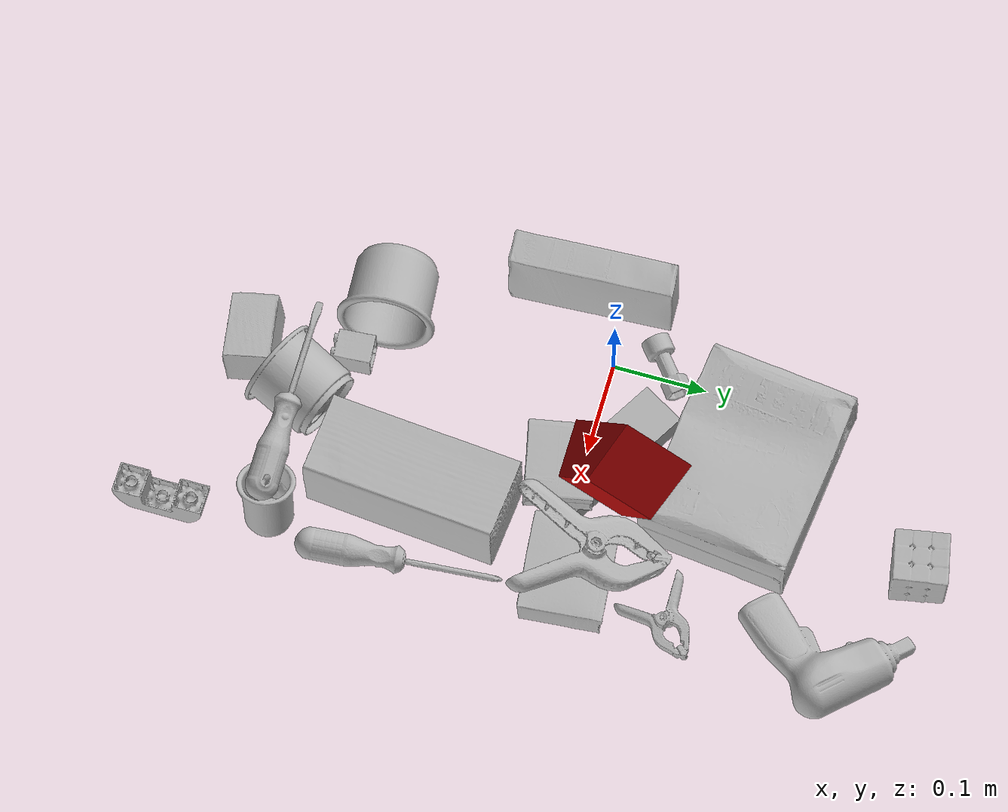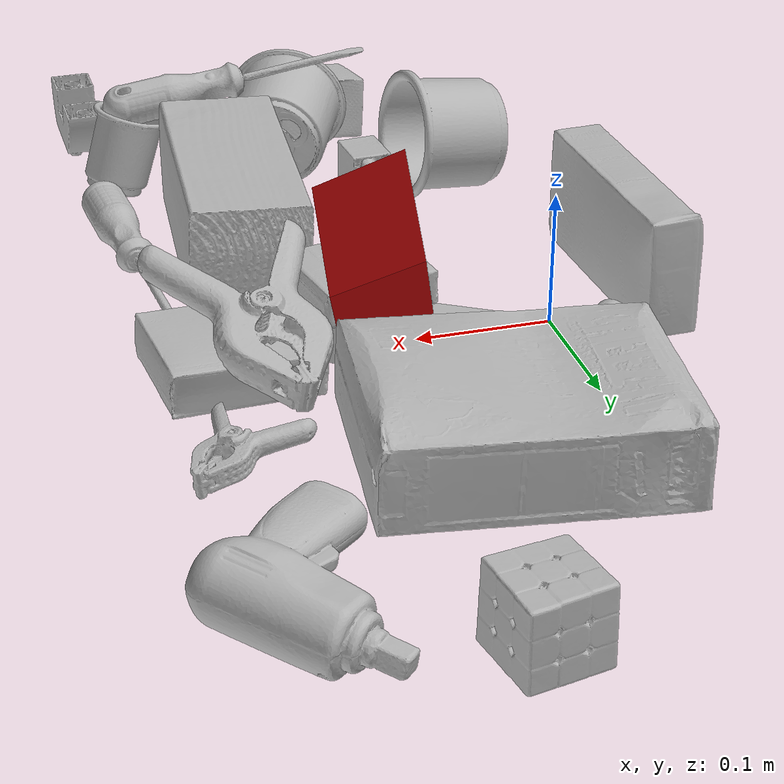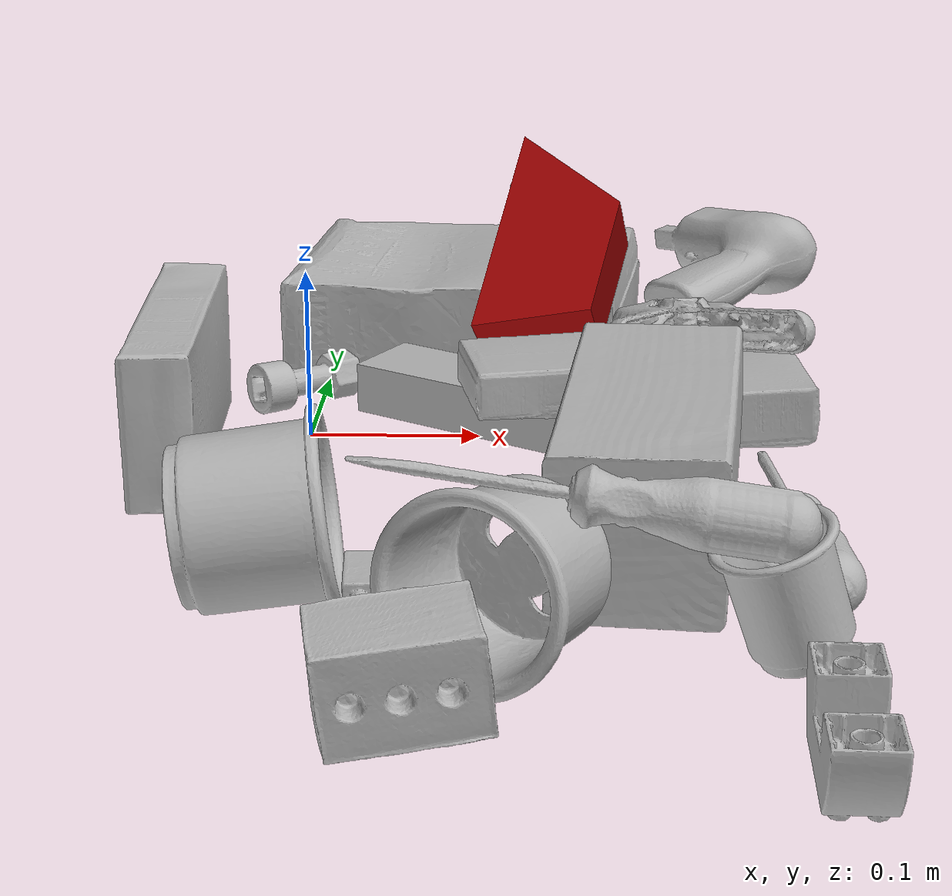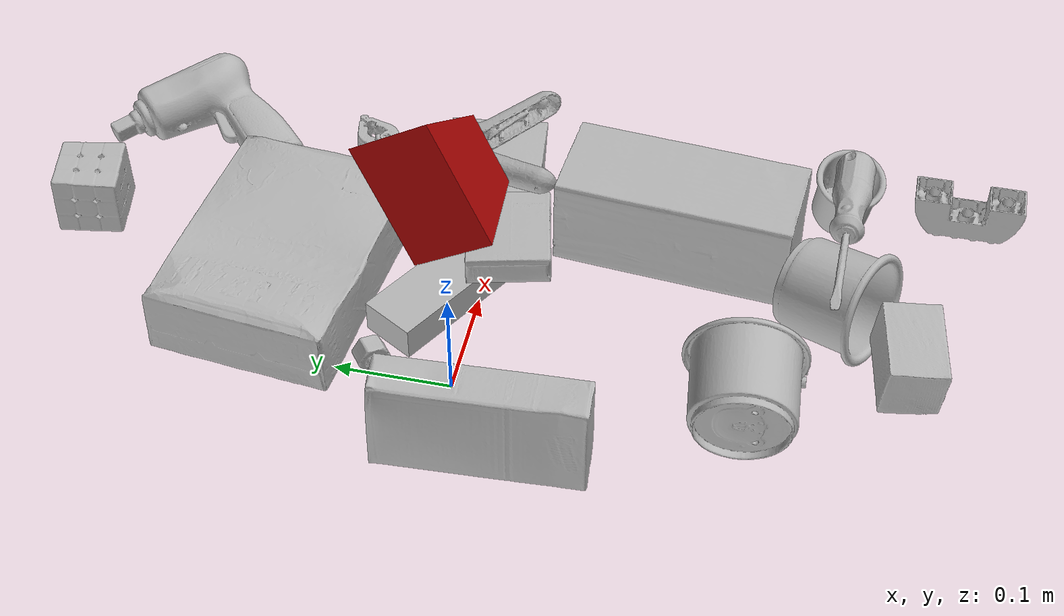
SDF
<sdf version="1.4">
  <world name="default">
    <light name="light1" type="point">
      <pose>0 0 1 0 0 0</pose>
      <diffuse>3 3 3 1</diffuse>
      <specular>3 3 3 1</specular>
    </light>
    <light name="light2" type="point">
      <pose>0 0.5 2 0 0 0</pose>
      <diffuse>1 1 1 1</diffuse>
      <specular>1 1 1 1</specular>
    </light>
    <light name="light3" type="point">
      <pose>0 0.5 2 0 0 0</pose>
      <diffuse>3 3 3 1</diffuse>
      <specular>3 3 3 1</specular>
    </light>
    <scene>
      <ambient>0.7 0.7 0.7</ambient>
    </scene>
    <model name="box21">
      <link name="link_box21">
        <collision name="default">
          <geometry>
            <mesh>
              <uri>model://cracker_box/collision_meshes/collision.obj</uri>
              <scale>1.0 1.0 1.0</scale>
            </mesh>
          </geometry>
          <surface>
            <friction>
              <ode>
                <mu>0.5</mu>
                <mu2>0.5</mu2>
              </ode>
            </friction>
          <contact>
        <ode>
            <max_vel>0</max_vel>
            <min_depth>0.0001</min_depth>
            <kp>1e8</kp>
        </ode>
    </contact></surface>
        </collision>
        <visual name="default">
          <geometry>
            <mesh>
              <uri>model://cracker_box/visual_meshes/visual.dae</uri>
              <scale>1.0 1.0 1.0</scale>
            </mesh>
          </geometry>
        </visual>
        <inertial>
          <mass>3.1344146728515625</mass>
          <pose>0.0009464123286306858 0.00025434247800149024 -0.0017029535956680775 -0.0003162077429326042 -0.011106488668875016 0.0025467950024750923</pose>
          <inertia>
            <ixx>0.0079725515</ixx>
            <iyy>0.01316425</iyy>
            <izz>0.01878659</izz>
            <ixy>0</ixy>
            <ixz>0</ixz>
            <iyz>0</iyz>
          </inertia>
        </inertial>
      </link>
      <pose>0.08359619975090027 0.16597023606300354 0.0364823192358017 -0.011804007056950826 -0.007368635642825667 -0.11161856514013514</pose>
    </model>
    <model name="box22">
      <link name="link_box22">
        <collision name="default">
          <geometry>
            <mesh>
              <uri>model://jenga/collision_meshes/collision.obj</uri>
              <scale>1.0 1.0 1.0</scale>
            </mesh>
          </geometry>
          <surface>
            <friction>
              <ode>
                <mu>0.5</mu>
                <mu2>0.5</mu2>
              </ode>
            </friction>
          <contact>
        <ode>
            <max_vel>0</max_vel>
            <min_depth>0.0001</min_depth>
            <kp>1e8</kp>
        </ode>
    </contact></surface>
        </collision>
        <visual name="default">
          <geometry>
            <mesh>
              <uri>model://jenga/visual_meshes/visual.dae</uri>
              <scale>1.0 1.0 1.0</scale>
            </mesh>
          </geometry>
        </visual>
        <inertial>
          <mass>0.23869852721691132</mass>
          <pose>-2.502855807051674e-07 -0.0001025000965455547 -4.092339804628864e-05 0.0 -7.34215461761844e-07 0.0</pose>
          <inertia>
            <ixx>6.605367e-05</ixx>
            <iyy>0.00044757788</iyy>
            <izz>0.00047782745</izz>
            <ixy>0</ixy>
            <ixz>0</ixz>
            <iyz>0</iyz>
          </inertia>
        </inertial>
      </link>
      <pose>0.10078098624944687 0.02591295912861824 0.014997527003288269 8.678563983081988e-05 1.569318041318597e-05 2.611281240180502</pose>
    </model>
    <model name="box23">
      <link name="link_box23">
        <collision name="default">
          <geometry>
            <mesh>
              <uri>model://rubiks_cube/collision_meshes/collision.obj</uri>
              <scale>1.0 1.0 1.0</scale>
            </mesh>
          </geometry>
          <surface>
            <friction>
              <ode>
                <mu>0.5</mu>
                <mu2>0.5</mu2>
              </ode>
            </friction>
          <contact>
        <ode>
            <max_vel>0</max_vel>
            <min_depth>0.0001</min_depth>
            <kp>1e8</kp>
        </ode>
    </contact></surface>
        </collision>
        <visual name="default">
          <geometry>
            <mesh>
              <uri>model://rubiks_cube/visual_meshes/visual.dae</uri>
              <scale>1.0 1.0 1.0</scale>
            </mesh>
          </geometry>
        </visual>
        <inertial>
          <mass>0.26229962706565857</mass>
          <pose>2.6721041649580002e-05 5.2569666877388954e-05 -7.264316082000732e-06 -0.05467189873579491 -0.09814109048128683 -0.0344550730209751</pose>
          <inertia>
            <ixx>0.00014493814</ixx>
            <iyy>0.00014426222</iyy>
            <izz>0.00014613918</izz>
            <ixy>0</ixy>
            <ixz>0</ixz>
            <iyz>0</iyz>
          </inertia>
        </inertial>
      </link>
      <pose>0.13583070039749146 0.3624066412448883 0.02933008410036564 1.5776132545936916 -0.01667874835860224 0.18664568982764373</pose>
    </model>
    <model name="cup1">
      <link name="link_cup1">
        <collision name="default">
          <geometry>
            <mesh>
              <uri>model://j_cups/collision_meshes/collision.obj</uri>
              <scale>1.0 1.0 1.0</scale>
            </mesh>
          </geometry>
          <surface>
            <friction>
              <ode>
                <mu>0.5</mu>
                <mu2>0.5</mu2>
              </ode>
            </friction>
          <contact>
        <ode>
            <max_vel>0</max_vel>
            <min_depth>0.0001</min_depth>
            <kp>1e8</kp>
        </ode>
    </contact></surface>
        </collision>
        <visual name="default">
          <geometry>
            <mesh>
              <uri>model://j_cups/visual_meshes/visual.dae</uri>
              <scale>1.0 1.0 1.0</scale>
            </mesh>
          </geometry>
        </visual>
        <inertial>
          <mass>0.10388943552970886</mass>
          <pose>0.0006164857186377048 0.0005398984649218619 -0.0013479008339345455 0.03030360356214998 0.03758024855654077 0.43868424196936845</pose>
          <inertia>
            <ixx>0.00015254253</ixx>
            <iyy>0.0001541288</iyy>
            <izz>0.00017584988</izz>
            <ixy>0</ixy>
            <ixz>0</ixz>
            <iyz>0</iyz>
          </inertia>
        </inertial>
      </link>
      <pose>0.003975513391196728 -0.2385554313659668 0.04698612913489342 0.7505193759601588 1.4120530543755605 0.8511836834659571</pose>
    </model>
    <model name="cup2">
      <link name="link_cup2">
        <collision name="default">
          <geometry>
            <mesh>
              <uri>model://i_cups/collision_meshes/collision.obj</uri>
              <scale>1.0 1.0 1.0</scale>
            </mesh>
          </geometry>
          <surface>
            <friction>
              <ode>
                <mu>0.5</mu>
                <mu2>0.5</mu2>
              </ode>
            </friction>
          <contact>
        <ode>
            <max_vel>0</max_vel>
            <min_depth>0.0001</min_depth>
            <kp>1e8</kp>
        </ode>
    </contact></surface>
        </collision>
        <visual name="default">
          <geometry>
            <mesh>
              <uri>model://i_cups/visual_meshes/visual.dae</uri>
              <scale>1.0 1.0 1.0</scale>
            </mesh>
          </geometry>
        </visual>
        <inertial>
          <mass>0.057485051453113556</mass>
          <pose>0.00011239853483857587 0.00016797262651380152 -0.000857901235576719 -0.028982969026390082 -0.03987335468246028 -0.34591562504163004</pose>
          <inertia>
            <ixx>7.958892e-05</ixx>
            <iyy>8.029015e-05</iyy>
            <izz>8.8953486e-05</izz>
            <ixy>0</ixy>
            <ixz>0</ixz>
            <iyz>0</iyz>
          </inertia>
        </inertial>
      </link>
      <pose>0.1260787546634674 -0.2980048656463623 0.044965438544750214 -1.284142725298135 -1.1440388281394815 2.451312009349547</pose>
    </model>
    <model name="box11">
      <link name="link_box11">
        <collision name="default">
          <geometry>
            <mesh>
              <uri>model://wood_block/collision_meshes/collision.obj</uri>
              <scale>1.0 1.0 1.0</scale>
            </mesh>
          </geometry>
          <surface>
            <friction>
              <ode>
                <mu>0.5</mu>
                <mu2>0.5</mu2>
              </ode>
            </friction>
          <contact>
        <ode>
            <max_vel>0</max_vel>
            <min_depth>0.0001</min_depth>
            <kp>1e8</kp>
        </ode>
    </contact></surface>
        </collision>
        <visual name="default">
          <geometry>
            <mesh>
              <uri>model://wood_block/visual_meshes/visual.dae</uri>
              <scale>1.0 1.0 1.0</scale>
            </mesh>
          </geometry>
        </visual>
        <inertial>
          <mass>2.2218124866485596</mass>
          <pose>-5.813315510749817e-06 -0.000570809468626976 0.0002640858292579651 -0.052211005792275555 -0.005192694700552194 -0.006861375481739596</pose>
          <inertia>
            <ixx>0.0029731211</ixx>
            <iyy>0.009392092</iyy>
            <izz>0.009356961</izz>
            <ixy>0</ixy>
            <ixz>0</ixz>
            <iyz>0</iyz>
          </inertia>
        </inertial>
      </link>
      <pose>0.19596077501773834 -0.157470703125 0.04570075497031212 1.5681397201279554 -0.006949547804638283 1.4898950449160342</pose>
    </model>
    <model name="box12">
      <link name="link_box12">
        <collision name="default">
          <geometry>
            <mesh>
              <uri>model://sugar_box/collision_meshes/collision.obj</uri>
              <scale>1.0 1.0 1.0</scale>
            </mesh>
          </geometry>
          <surface>
            <friction>
              <ode>
                <mu>0.5</mu>
                <mu2>0.5</mu2>
              </ode>
            </friction>
          <contact>
        <ode>
            <max_vel>0</max_vel>
            <min_depth>0.0001</min_depth>
            <kp>1e8</kp>
        </ode>
    </contact></surface>
        </collision>
        <visual name="default">
          <geometry>
            <mesh>
              <uri>model://sugar_box/visual_meshes/visual.dae</uri>
              <scale>1.0 1.0 1.0</scale>
            </mesh>
          </geometry>
        </visual>
        <inertial>
          <mass>1.0162616968154907</mass>
          <pose>0.0010343727190047503 3.849109634757042e-05 -0.00036364805418998003 -0.0004046261550277283 0.0010506634055573133 0.0026153787890220875</pose>
          <inertia>
            <ixx>0.00084674655</ixx>
            <iyy>0.002736858</iyy>
            <izz>0.0032763465</izz>
            <ixy>0</ixy>
            <ixz>0</ixz>
            <iyz>0</iyz>
          </inertia>
        </inertial>
      </link>
      <pose>-0.06913144886493683 -0.04204687476158142 0.046450089663267136 1.5710197035759321 -3.9946623841988186e-05 1.6228073396840872</pose>
    </model>
    <model name="box13">
      <link name="link_box13">
        <collision name="default">
          <geometry>
            <mesh>
              <uri>model://pudding_box/collision_meshes/collision.obj</uri>
              <scale>1.0 1.0 1.0</scale>
            </mesh>
          </geometry>
          <surface>
            <friction>
              <ode>
                <mu>0.5</mu>
                <mu2>0.5</mu2>
              </ode>
            </friction>
          <contact>
        <ode>
            <max_vel>0</max_vel>
            <min_depth>0.0001</min_depth>
            <kp>1e8</kp>
        </ode>
    </contact></surface>
        </collision>
        <visual name="default">
          <geometry>
            <mesh>
              <uri>model://pudding_box/visual_meshes/visual.dae</uri>
              <scale>1.0 1.0 1.0</scale>
            </mesh>
          </geometry>
        </visual>
        <inertial>
          <mass>0.24922829866409302</mass>
          <pose>0.0004894822486676276 0.0008067885646596551 -0.0005188828217796981 0.005213100397381839 -0.006603797317439846 0.02007982889363753</pose>
          <inertia>
            <ixx>0.00028173975</ixx>
            <iyy>0.00018955652</iyy>
            <izz>0.0004160624</izz>
            <ixy>0</ixy>
            <ixz>0</ixz>
            <iyz>0</iyz>
          </inertia>
        </inertial>
      </link>
      <pose>0.2375979870557785 0.019510241225361824 0.019725801423192024 0.02234581703630515 -0.011398721132478239 -1.472823512718753</pose>
    </model>
    <model name="box14">
      <link name="link_box14">
        <collision name="default">
          <geometry>
            <mesh>
              <uri>model://gelatin_box/collision_meshes/collision.obj</uri>
              <scale>1.0 1.0 1.0</scale>
            </mesh>
          </geometry>
          <surface>
            <friction>
              <ode>
                <mu>0.5</mu>
                <mu2>0.5</mu2>
              </ode>
            </friction>
          <contact>
        <ode>
            <max_vel>0</max_vel>
            <min_depth>0.0001</min_depth>
            <kp>1e8</kp>
        </ode>
    </contact></surface>
        </collision>
        <visual name="default">
          <geometry>
            <mesh>
              <uri>model://gelatin_box/visual_meshes/visual.dae</uri>
              <scale>1.0 1.0 1.0</scale>
            </mesh>
          </geometry>
        </visual>
        <inertial>
          <mass>0.21856601536273956</mass>
          <pose>0.0004319618456065655 0.00011156871914863586 -0.00036403213744051754 -0.001050372093012012 -0.00475581868936722 0.016440559471878533</pose>
          <inertia>
            <ixx>0.00015428978</ixx>
            <iyy>0.000110208384</iyy>
            <izz>0.00023486343</izz>
            <ixy>0</ixy>
            <ixz>0</ixz>
            <iyz>0</iyz>
          </inertia>
        </inertial>
      </link>
      <pose>0.1372665911912918 -0.017707232385873795 0.04465378820896149 -3.141434040742944 -0.01871282266355888 -1.3533272430733692</pose>
    </model>
    <model name="cup15">
      <link name="link_cup15">
        <collision name="default">
          <geometry>
            <mesh>
              <uri>model://b_cups/collision_meshes/collision.obj</uri>
              <scale>1.0 1.0 1.0</scale>
            </mesh>
          </geometry>
          <surface>
            <friction>
              <ode>
                <mu>0.5</mu>
                <mu2>0.5</mu2>
              </ode>
            </friction>
          <contact>
        <ode>
            <max_vel>0</max_vel>
            <min_depth>0.0001</min_depth>
            <kp>1e8</kp>
        </ode>
    </contact></surface>
        </collision>
        <visual name="default">
          <geometry>
            <mesh>
              <uri>model://b_cups/visual_meshes/visual.dae</uri>
              <scale>1.0 1.0 1.0</scale>
            </mesh>
          </geometry>
        </visual>
        <inertial>
          <mass>0.04691024869680405</mass>
          <pose>0.0005182002787478268 0.0018058588029816747 -0.0013381802709773183 0.1135631498080702 0.03872518969029637 -0.3456955043116969</pose>
          <inertia>
            <ixx>3.0706047e-05</ixx>
            <iyy>3.012308e-05</iyy>
            <izz>2.5838557e-05</izz>
            <ixy>0</ixy>
            <ixz>0</ixz>
            <iyz>0</iyz>
          </inertia>
        </inertial>
      </link>
      <pose>0.25670257210731506 -0.29478779435157776 0.036933787167072296 -0.31714541698178284 -0.04963342530667917 1.7528541970590164</pose>
    </model>
    <model name="toy1">
      <link name="link_toy1">
        <collision name="default">
          <geometry>
            <mesh>
              <uri>model://e_lego_duplo/collision_meshes/collision.obj</uri>
              <scale>1.0 1.0 1.0</scale>
            </mesh>
          </geometry>
          <surface>
            <friction>
              <ode>
                <mu>0.5</mu>
                <mu2>0.5</mu2>
              </ode>
            </friction>
          <contact>
        <ode>
            <max_vel>0</max_vel>
            <min_depth>0.0001</min_depth>
            <kp>1e8</kp>
        </ode>
    </contact></surface>
        </collision>
        <visual name="default">
          <geometry>
            <mesh>
              <uri>model://e_lego_duplo/visual_meshes/visual.dae</uri>
              <scale>1.0 1.0 1.0</scale>
            </mesh>
          </geometry>
        </visual>
        <inertial>
          <mass>0.06732096523046494</mass>
          <pose>0.000325604691170156 0.00023485434940084815 0.001952146296389401 -0.02256754688519212 -6.825533823954374e-05 -0.007625149208872714</pose>
          <inertia>
            <ixx>1.40386455e-05</ixx>
            <iyy>5.761822e-05</iyy>
            <izz>5.6108554e-05</izz>
            <ixy>0</ixy>
            <ixz>0</ixz>
            <iyz>0</iyz>
          </inertia>
        </inertial>
      </link>
      <pose>0.2750775218009949 -0.403158038854599 0.021755458787083626 -3.1248236971493055 -0.0022755761523115103 1.5667262470138086</pose>
    </model>
    <model name="toy2">
      <link name="link_toy2">
        <collision name="default">
          <geometry>
            <mesh>
              <uri>model://c_toy_airplane/collision_meshes/collision.obj</uri>
              <scale>1.0 1.0 1.0</scale>
            </mesh>
          </geometry>
          <surface>
            <friction>
              <ode>
                <mu>0.5</mu>
                <mu2>0.5</mu2>
              </ode>
            </friction>
          <contact>
        <ode>
            <max_vel>0</max_vel>
            <min_depth>0.0001</min_depth>
            <kp>1e8</kp>
        </ode>
    </contact></surface>
        </collision>
        <visual name="default">
          <geometry>
            <mesh>
              <uri>model://c_toy_airplane/visual_meshes/visual.dae</uri>
              <scale>1.0 1.0 1.0</scale>
            </mesh>
          </geometry>
        </visual>
        <inertial>
          <mass>0.036399733275175095</mass>
          <pose>-0.00023024277470540255 -4.4302899482318026e-07 -0.0060805329121649265 -0.006192184726307751 -0.016797944030005924 0.7654593329003626</pose>
          <inertia>
            <ixx>1.6714015e-05</ixx>
            <iyy>1.6666843e-05</iyy>
            <izz>3.9241195e-06</izz>
            <ixy>0</ixy>
            <ixz>0</ixz>
            <iyz>0</iyz>
          </inertia>
        </inertial>
      </link>
      <pose>-0.009817518293857574 0.054765135049819946 0.014399595558643341 -1.6156474702318564 0.4267914452292945 -0.9197638294654659</pose>
    </model>
    <model name="toy3">
      <link name="link_toy3">
        <collision name="default">
          <geometry>
            <mesh>
              <uri>model://foam_brick/collision_meshes/collision.obj</uri>
              <scale>1.0 1.0 1.0</scale>
            </mesh>
          </geometry>
          <surface>
            <friction>
              <ode>
                <mu>0.5</mu>
                <mu2>0.5</mu2>
              </ode>
            </friction>
          <contact>
        <ode>
            <max_vel>0</max_vel>
            <min_depth>0.0001</min_depth>
            <kp>1e8</kp>
        </ode>
    </contact></surface>
        </collision>
        <visual name="default">
          <geometry>
            <mesh>
              <uri>model://foam_brick/visual_meshes/visual.dae</uri>
              <scale>1.0 1.0 1.0</scale>
            </mesh>
          </geometry>
        </visual>
        <inertial>
          <mass>0.28719362616539</mass>
          <pose>-0.0002522472059354186 0.00034584346576593816 -0.0002532101352699101 -0.2940183114741006 0.017274439707053432 -0.0007449906726392561</pose>
          <inertia>
            <ixx>0.00012545152</ixx>
            <iyy>0.00020028985</iyy>
            <izz>0.00020283528</izz>
            <ixy>0</ixy>
            <ixz>0</ixz>
            <iyz>0</iyz>
          </inertia>
        </inertial>
      </link>
      <pose>0.08339028805494308 -0.36529210209846497 0.03059106133878231 -1.6378189800269702 0.09857804771918079 -2.9690514795654384</pose>
    </model>
    <model name="toy4">
      <link name="link_toy4">
        <collision name="default">
          <geometry>
            <mesh>
              <uri>model://prism/collision_meshes/collision.obj</uri>
              <scale>1.0 1.0 1.0</scale>
            </mesh>
          </geometry>
          <surface>
            <friction>
              <ode>
                <mu>0.5</mu>
                <mu2>0.5</mu2>
              </ode>
            </friction>
          <contact>
        <ode>
            <max_vel>0</max_vel>
            <min_depth>0.0001</min_depth>
            <kp>1e8</kp>
        </ode>
    </contact></surface>
        </collision>
        <visual name="default">
          <geometry>
            <mesh>
              <uri>model://prism/visual_meshes/visual.dae</uri>
              <scale>1.0 1.0 1.0</scale>
            </mesh>
          </geometry>
        </visual>
        <inertial>
          <mass>0.7170383930206299</mass>
          <pose>-9.85359656624496e-05 -4.96157269935793e-07 -0.0033869098406285048 0.0 0.006559181231804993 0.0</pose>
          <inertia>
            <ixx>0.0006471183</ixx>
            <iyy>0.0007820508</iyy>
            <izz>0.0009579188</izz>
            <ixy>0</ixy>
            <ixz>0</ixz>
            <iyz>0</iyz>
          </inertia>
        </inertial>
      </link>
      <pose>0.14481835067272186 0.04564570635557175 0.09362688660621643 1.8646410772060966 -0.9679800543367519 1.1259746070010717</pose>
    </model>
    <model name="toy5">
      <link name="link_toy5">
        <collision name="default">
          <geometry>
            <mesh>
              <uri>model://b_toy_airplane/collision_meshes/collision.obj</uri>
              <scale>1.0 1.0 1.0</scale>
            </mesh>
          </geometry>
          <surface>
            <friction>
              <ode>
                <mu>0.5</mu>
                <mu2>0.5</mu2>
              </ode>
            </friction>
          <contact>
        <ode>
            <max_vel>0</max_vel>
            <min_depth>0.0001</min_depth>
            <kp>1e8</kp>
        </ode>
    </contact></surface>
        </collision>
        <visual name="default">
          <geometry>
            <mesh>
              <uri>model://b_toy_airplane/visual_meshes/visual.dae</uri>
              <scale>1.0 1.0 1.0</scale>
            </mesh>
          </geometry>
        </visual>
        <inertial>
          <mass>0.399619996547699</mass>
          <pose>0.005081363022327423 0.004015584941953421 0.009543066844344139 -0.04001809649421662 -0.04022184162979335 -0.5601502893443677</pose>
          <inertia>
            <ixx>0.0007419019</ixx>
            <iyy>0.00029654545</iyy>
            <izz>0.0009229998</izz>
            <ixy>0</ixy>
            <ixz>0</ixz>
            <iyz>0</iyz>
          </inertia>
        </inertial>
      </link>
      <pose>0.2634042501449585 0.28771063685417175 0.035689108073711395 3.069570821891507 0.07405955912319281 2.353041316772865</pose>
    </model>
    <model name="toy6">
      <link name="link_toy6">
        <collision name="default">
          <geometry>
            <mesh>
              <uri>model://f_lego_duplo/collision_meshes/collision.obj</uri>
              <scale>1.0 1.0 1.0</scale>
            </mesh>
          </geometry>
          <surface>
            <friction>
              <ode>
                <mu>0.5</mu>
                <mu2>0.5</mu2>
              </ode>
            </friction>
          <contact>
        <ode>
            <max_vel>0</max_vel>
            <min_depth>0.0001</min_depth>
            <kp>1e8</kp>
        </ode>
    </contact></surface>
        </collision>
        <visual name="default">
          <geometry>
            <mesh>
              <uri>model://f_lego_duplo/visual_meshes/visual.dae</uri>
              <scale>1.0 1.0 1.0</scale>
            </mesh>
          </geometry>
        </visual>
        <inertial>
          <mass>0.05315950885415077</mass>
          <pose>2.3694145056651905e-05 0.0001339314185315743 0.0018837872194126248 0.029838727868319145 -0.014424898970195728 -0.6756716124708322</pose>
          <inertia>
            <ixx>1.1232896e-05</ixx>
            <iyy>1.1332969e-05</iyy>
            <izz>9.750634e-06</izz>
            <ixy>0</ixy>
            <ixz>0</ixz>
            <iyz>0</iyz>
          </inertia>
        </inertial>
      </link>
      <pose>0.06515682488679886 -0.26309025287628174 0.016363946720957756 1.7410803142173195 -1.5707598744894442 -0.0906016541976921</pose>
    </model>
    <model name="hardware1">
      <link name="link_hardware1">
        <collision name="default">
          <geometry>
            <mesh>
              <uri>model://flat_screwdriver/collision_meshes/collision.obj</uri>
              <scale>1.0 1.0 1.0</scale>
            </mesh>
          </geometry>
          <surface>
            <friction>
              <ode>
                <mu>0.5</mu>
                <mu2>0.5</mu2>
              </ode>
            </friction>
          <contact>
        <ode>
            <max_vel>0</max_vel>
            <min_depth>0.0001</min_depth>
            <kp>1e8</kp>
        </ode>
    </contact></surface>
        </collision>
        <visual name="default">
          <geometry>
            <mesh>
              <uri>model://flat_screwdriver/visual_meshes/visual.dae</uri>
              <scale>1.0 1.0 1.0</scale>
            </mesh>
          </geometry>
        </visual>
        <inertial>
          <mass>0.12191366404294968</mass>
          <pose>-0.0489187091588974 -0.0006576801533810794 -0.0006140916957519948 -0.5614853566550635 -0.0032337267722331534 0.006982277608032515</pose>
          <inertia>
            <ixx>1.4404012e-05</ixx>
            <iyy>0.00018286215</iyy>
            <izz>0.00018277747</izz>
            <ixy>0</ixy>
            <ixz>0</ixz>
            <iyz>0</iyz>
          </inertia>
        </inertial>
      </link>
      <pose>0.16432718932628632 -0.29985520243644714 0.08619364351034164 0.15094442583778642 -0.14146335123194448 3.1250343775575122</pose>
    </model>
    <model name="hardware2">
      <link name="link_hardware2">
        <collision name="default">
          <geometry>
            <mesh>
              <uri>model://medium_clamp/collision_meshes/collision.obj</uri>
              <scale>1.0 1.0 1.0</scale>
            </mesh>
          </geometry>
          <surface>
            <friction>
              <ode>
                <mu>0.5</mu>
                <mu2>0.5</mu2>
              </ode>
            </friction>
          <contact>
        <ode>
            <max_vel>0</max_vel>
            <min_depth>0.0001</min_depth>
            <kp>1e8</kp>
        </ode>
    </contact></surface>
        </collision>
        <visual name="default">
          <geometry>
            <mesh>
              <uri>model://medium_clamp/visual_meshes/visual.dae</uri>
              <scale>1.0 1.0 1.0</scale>
            </mesh>
          </geometry>
        </visual>
        <inertial>
          <mass>0.018204163759946823</mass>
          <pose>0.005390994716435671 0.00039532413939014077 -0.0001222158025484532 -0.0012269240735234023 0.0025845026557488396 0.03820772126630794</pose>
          <inertia>
            <ixx>4.959469e-06</ixx>
            <iyy>7.217431e-06</iyy>
            <izz>1.1117007e-05</izz>
            <ixy>0</ixy>
            <ixz>0</ixz>
            <iyz>0</iyz>
          </inertia>
        </inertial>
      </link>
      <pose>0.257830411195755 0.12695357203483582 0.013314717449247837 -3.0195335035496207 0.07747225095371707 0.7780234190447172</pose>
    </model>
    <model name="hardware3">
      <link name="link_hardware3">
        <collision name="default">
          <geometry>
            <mesh>
              <uri>model://large_clamp/collision_meshes/collision.obj</uri>
              <scale>1.0 1.0 1.0</scale>
            </mesh>
          </geometry>
          <surface>
            <friction>
              <ode>
                <mu>0.5</mu>
                <mu2>0.5</mu2>
              </ode>
            </friction>
          <contact>
        <ode>
            <max_vel>0</max_vel>
            <min_depth>0.0001</min_depth>
            <kp>1e8</kp>
        </ode>
    </contact></surface>
        </collision>
        <visual name="default">
          <geometry>
            <mesh>
              <uri>model://large_clamp/visual_meshes/visual.dae</uri>
              <scale>1.0 1.0 1.0</scale>
            </mesh>
          </geometry>
        </visual>
        <inertial>
          <mass>0.18972517549991608</mass>
          <pose>0.006369356997311115 0.0003585676895454526 -0.00018398048996459693 -0.002133071569430183 0.00967158655684735 0.02663316926682878</pose>
          <inertia>
            <ixx>0.0001673895</ixx>
            <iyy>0.00031788155</iyy>
            <izz>0.00045985627</izz>
            <ixy>0</ixy>
            <ixz>0</ixz>
            <iyz>0</iyz>
          </inertia>
        </inertial>
      </link>
      <pose>0.22104811668395996 0.03830510377883911 0.05672658607363701 -0.006824477949364878 0.23828672512634838 1.7128884836727498</pose>
    </model>
    <model name="hardware4">
      <link name="link_hardware4">
        <collision name="default">
          <geometry>
            <mesh>
              <uri>model://phillips_screwdriver/collision_meshes/collision.obj</uri>
              <scale>1.0 1.0 1.0</scale>
            </mesh>
          </geometry>
          <surface>
            <friction>
              <ode>
                <mu>0.5</mu>
                <mu2>0.5</mu2>
              </ode>
            </friction>
          <contact>
        <ode>
            <max_vel>0</max_vel>
            <min_depth>0.0001</min_depth>
            <kp>1e8</kp>
        </ode>
    </contact></surface>
        </collision>
        <visual name="default">
          <geometry>
            <mesh>
              <uri>model://phillips_screwdriver/visual_meshes/visual.dae</uri>
              <scale>1.0 1.0 1.0</scale>
            </mesh>
          </geometry>
        </visual>
        <inertial>
          <mass>0.10424148291349411</mass>
          <pose>-0.047771818935871124 0.0010362300090491772 -0.000455554953077808 -0.15717568897110376 0.005850990280187748 -0.0021567475529960492</pose>
          <inertia>
            <ixx>1.2247306e-05</ixx>
            <iyy>0.00015355984</iyy>
            <izz>0.00015369034</izz>
            <ixy>0</ixy>
            <ixz>0</ixz>
            <iyz>0</iyz>
          </inertia>
        </inertial>
      </link>
      <pose>0.27196642756462097 -0.15391620993614197 0.014195259660482407 -2.960181753658294 0.05168005264357275 1.6678892732800783</pose>
    </model>
  <physics type="ode">
      <max_contacts>50</max_contacts>
      <ode>
        <solver>
          <type>quick</type>
          <iters>75</iters>
        </solver>
        <constraints>
          <contact_max_correcting_vel>0</contact_max_correcting_vel>
          <contact_surface_layer>0</contact_surface_layer>
        </constraints>
      </ode>
    </physics></world>
</sdf>
